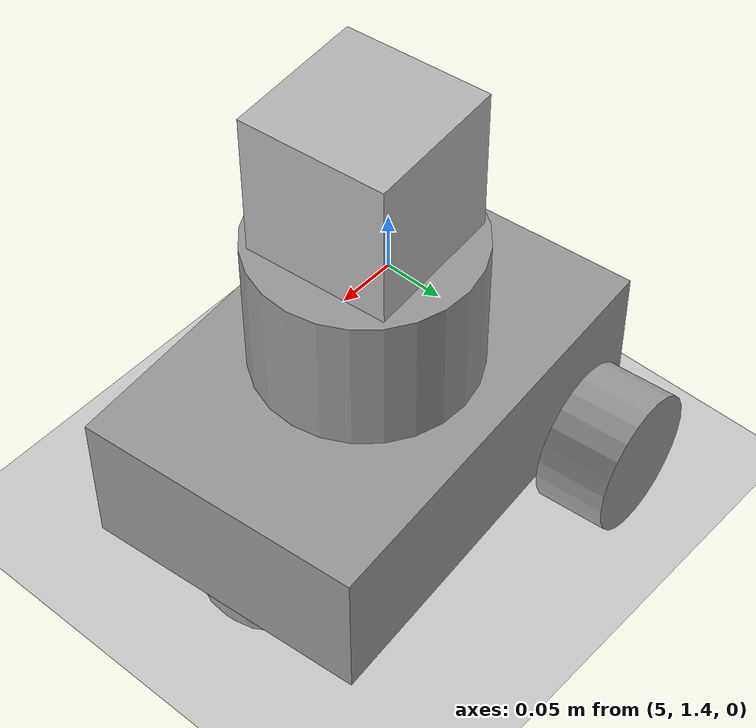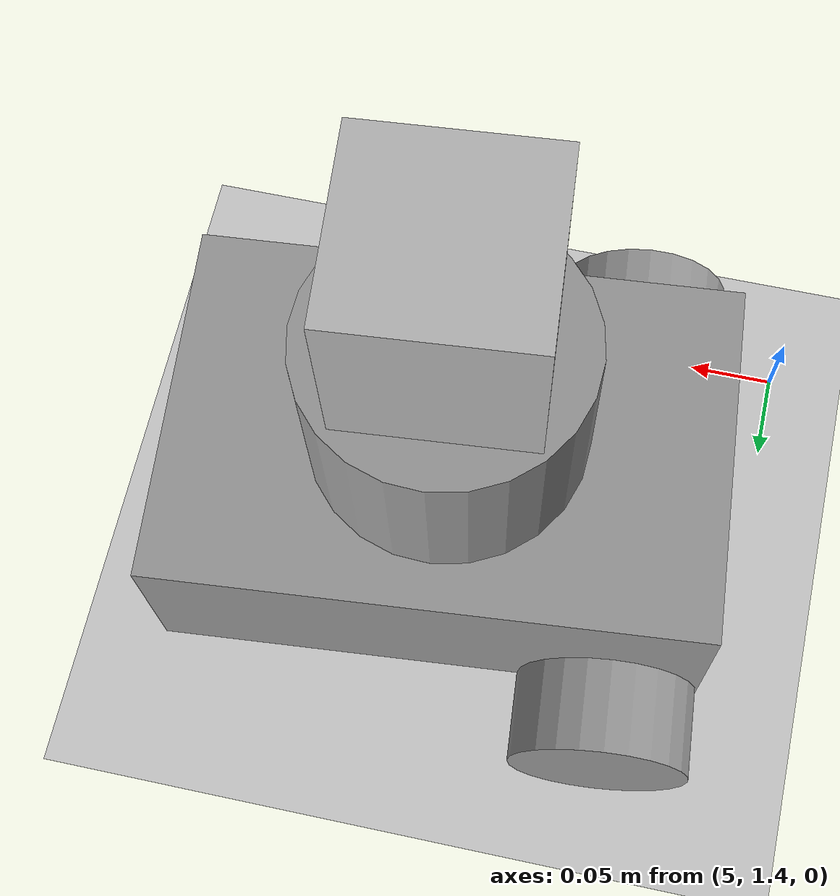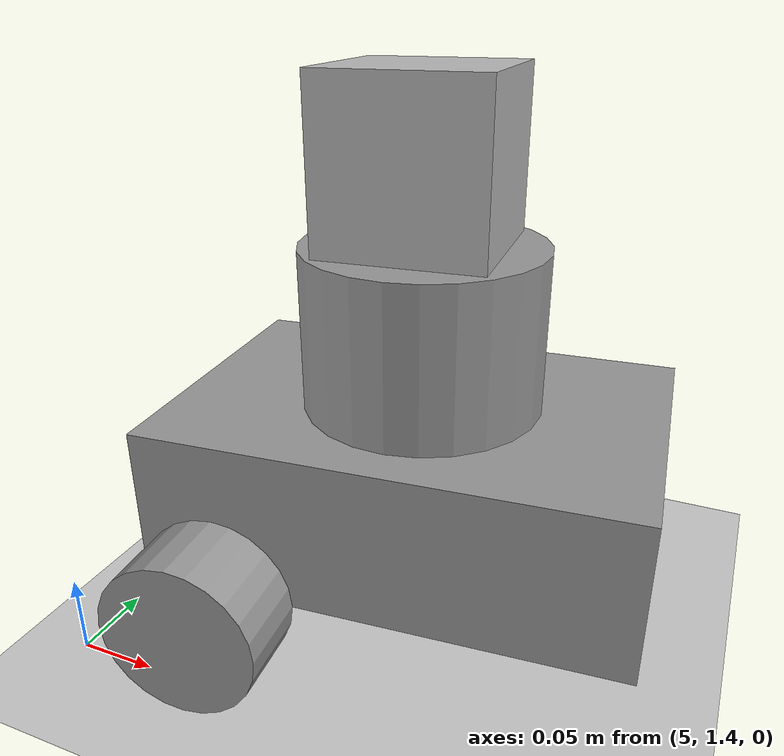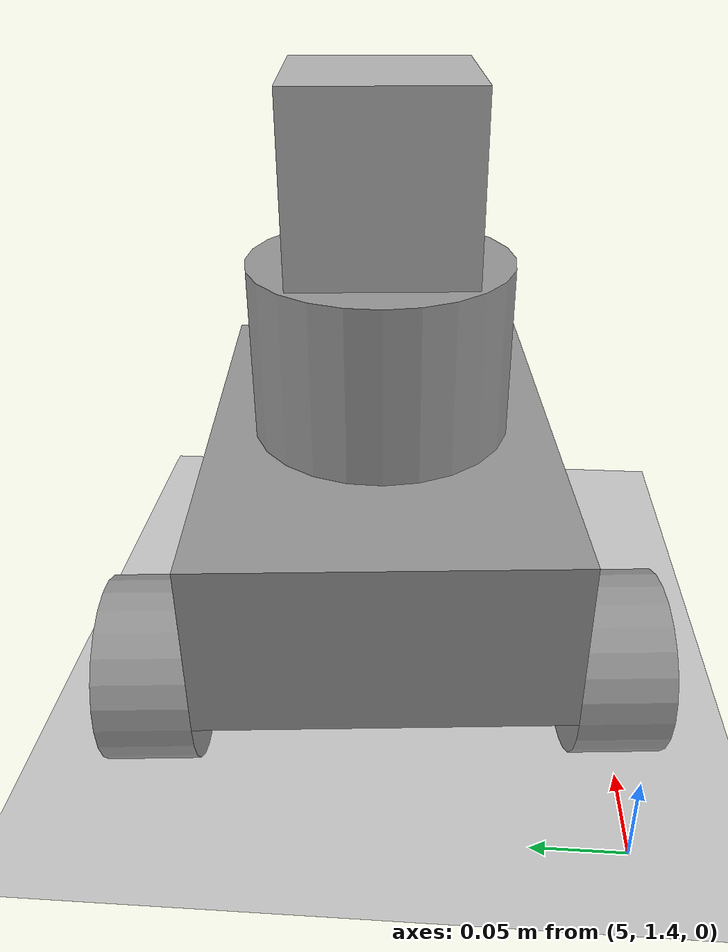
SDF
<sdf version="1.6">
 <world name="default">
  <model name="ground_plane">
   <static>1</static>
   <link name="link">
    <collision name="collision">
     <geometry><plane><normal>0 0 1</normal><size>100 100</size></plane></geometry>
     <surface>
      <contact><collide_bitmask>65535</collide_bitmask></contact>
      <friction><ode><mu>100</mu><mu2>50</mu2></ode></friction>
     </surface>
    </collision>
    <visual name="visual">
     <cast_shadows>0</cast_shadows>
     <geometry><plane><normal>0 0 1</normal><size>100 100</size></plane></geometry>
     <material>
      <script><uri>file://media/materials/scripts/gazebo.material</uri><name>Gazebo/Grey</name></script>
     </material>
    </visual>
   </link>
  </model>
  <model name="test_robot_0">
   <link name="link_0">
    <pose>0.021878 2.7e-05 0.011 0 -0 0</pose>
    <inertial>
     <mass>1</mass>
     <inertia>
      <ixx>0.166667</ixx>
      <ixy>0</ixy>
      <ixz>0</ixz>
      <iyy>0.166667</iyy>
      <iyz>0</iyz>
      <izz>0.166667</izz>
     </inertia>
    </inertial>
    <visual name="visual">
     <geometry><box><size>0.3 0.2 0.1</size></box></geometry>
     <material>
      <lighting>1</lighting>
      <script><uri>file://media/materials/scripts/gazebo.material</uri><name>Gazebo/Grey</name></script>
      <shader type="pixel"><normal_map>__default__</normal_map></shader>
      <ambient>0.3 0.3 0.3 1</ambient>
      <diffuse>0.7 0.7 0.7 1</diffuse>
      <specular>0.01 0.01 0.01 1</specular>
      <emissive>0 0 0 1</emissive>
     </material>
    </visual>
    <collision name="collision">
     <geometry><box><size>0.3 0.2 0.1</size></box></geometry>
     <surface>
      <friction>
       <ode><mu>1</mu><mu2>1</mu2><fdir1>0 0 0</fdir1><slip1>0</slip1><slip2>0</slip2></ode>
       <torsional>
        <coefficient>1</coefficient>
        <patch_radius>0</patch_radius>
        <surface_radius>0</surface_radius>
        <use_patch_radius>1</use_patch_radius>
        <ode><slip>0</slip></ode>
       </torsional>
      </friction>
      <bounce><restitution_coefficient>0</restitution_coefficient><threshold>1e+06</threshold></bounce>
      <contact>
       <collide_without_contact>0</collide_without_contact>
       <collide_without_contact_bitmask>1</collide_without_contact_bitmask>
       <collide_bitmask>1</collide_bitmask>
       <ode>
        <soft_cfm>0</soft_cfm>
        <soft_erp>0.2</soft_erp>
        <kp>1e+13</kp>
        <kd>1</kd>
        <max_vel>0.01</max_vel>
        <min_depth>0</min_depth>
       </ode>
       <bullet>
        <split_impulse>1</split_impulse>
        <split_impulse_penetration_threshold>-0.01</split_impulse_penetration_threshold>
        <soft_cfm>0</soft_cfm>
        <soft_erp>0.2</soft_erp>
        <kp>1e+13</kp>
        <kd>1</kd>
       </bullet>
      </contact>
     </surface>
    </collision>
   </link>
   <link name="link_1">
    <pose>-0.078122 0.125027 -0.039 1.5707 -0 0</pose>
    <inertial>
     <mass>1</mass>
     <inertia><ixx>0.145833</ixx><ixy>0</ixy><ixz>0</ixz><iyy>0.145833</iyy><iyz>0</iyz><izz>0.125</izz></inertia>
    </inertial>
    <visual name="visual">
     <geometry><cylinder><radius>0.05</radius><length>0.05</length></cylinder></geometry>
     <material>
      <lighting>1</lighting>
      <script><uri>file://media/materials/scripts/gazebo.material</uri><name>Gazebo/Grey</name></script>
      <shader type="pixel"><normal_map>__default__</normal_map></shader>
      <ambient>0.3 0.3 0.3 1</ambient>
      <diffuse>0.7 0.7 0.7 1</diffuse>
      <specular>0.01 0.01 0.01 1</specular>
      <emissive>0 0 0 1</emissive>
     </material>
    </visual>
    <collision name="collision">
     <geometry><cylinder><radius>0.05</radius><length>0.05</length></cylinder></geometry>
     <surface>
      <friction>
       <ode><mu>1</mu><mu2>1</mu2><fdir1>0 0 0</fdir1><slip1>0</slip1><slip2>0</slip2></ode>
       <torsional>
        <coefficient>1</coefficient>
        <patch_radius>0</patch_radius>
        <surface_radius>0</surface_radius>
        <use_patch_radius>1</use_patch_radius>
        <ode><slip>0</slip></ode>
       </torsional>
      </friction>
      <bounce><restitution_coefficient>0</restitution_coefficient><threshold>1e+06</threshold></bounce>
      <contact>
       <collide_without_contact>0</collide_without_contact>
       <collide_without_contact_bitmask>1</collide_without_contact_bitmask>
       <collide_bitmask>1</collide_bitmask>
       <ode>
        <soft_cfm>0</soft_cfm>
        <soft_erp>0.2</soft_erp>
        <kp>1e+13</kp>
        <kd>1</kd>
        <max_vel>0.01</max_vel>
        <min_depth>0</min_depth>
       </ode>
       <bullet>
        <split_impulse>1</split_impulse>
        <split_impulse_penetration_threshold>-0.01</split_impulse_penetration_threshold>
        <soft_cfm>0</soft_cfm>
        <soft_erp>0.2</soft_erp>
        <kp>1e+13</kp>
        <kd>1</kd>
       </bullet>
      </contact>
     </surface>
    </collision>
   </link>
   <link name="link_1_clone">
    <pose>-0.078122 -0.124973 -0.039 1.5707 -0 0</pose>
    <inertial>
     <mass>1</mass>
     <inertia><ixx>0.145833</ixx><ixy>0</ixy><ixz>0</ixz><iyy>0.145833</iyy><iyz>0</iyz><izz>0.125</izz></inertia>
    </inertial>
    <visual name="visual">
     <geometry><cylinder><radius>0.05</radius><length>0.05</length></cylinder></geometry>
     <material>
      <lighting>1</lighting>
      <script><uri>file://media/materials/scripts/gazebo.material</uri><name>Gazebo/Grey</name></script>
      <shader type="pixel"><normal_map>__default__</normal_map></shader>
      <ambient>0.3 0.3 0.3 1</ambient>
      <diffuse>0.7 0.7 0.7 1</diffuse>
      <specular>0.01 0.01 0.01 1</specular>
      <emissive>0 0 0 1</emissive>
     </material>
    </visual>
    <collision name="collision">
     <geometry><cylinder><radius>0.05</radius><length>0.05</length></cylinder></geometry>
     <surface>
      <friction>
       <ode><mu>1</mu><mu2>1</mu2><fdir1>0 0 0</fdir1><slip1>0</slip1><slip2>0</slip2></ode>
       <torsional>
        <coefficient>1</coefficient>
        <patch_radius>0</patch_radius>
        <surface_radius>0</surface_radius>
        <use_patch_radius>1</use_patch_radius>
        <ode><slip>0</slip></ode>
       </torsional>
      </friction>
      <bounce><restitution_coefficient>0</restitution_coefficient><threshold>1e+06</threshold></bounce>
      <contact>
       <collide_without_contact>0</collide_without_contact>
       <collide_without_contact_bitmask>1</collide_without_contact_bitmask>
       <collide_bitmask>1</collide_bitmask>
       <ode>
        <soft_cfm>0</soft_cfm>
        <soft_erp>0.2</soft_erp>
        <kp>1e+13</kp>
        <kd>1</kd>
        <max_vel>0.01</max_vel>
        <min_depth>0</min_depth>
       </ode>
       <bullet>
        <split_impulse>1</split_impulse>
        <split_impulse_penetration_threshold>-0.01</split_impulse_penetration_threshold>
        <soft_cfm>0</soft_cfm>
        <soft_erp>0.2</soft_erp>
        <kp>1e+13</kp>
        <kd>1</kd>
       </bullet>
      </contact>
     </surface>
    </collision>
   </link>
   <link name="link_2">
    <pose>0.121878 2.7e-05 -0.039 0 -0 0</pose>
    <inertial>
     <mass>1</mass>
     <inertia><ixx>0.1</ixx><ixy>0</ixy><ixz>0</ixz><iyy>0.1</iyy><iyz>0</iyz><izz>0.1</izz></inertia>
    </inertial>
    <visual name="visual">
     <geometry><sphere><radius>0.05</radius></sphere></geometry>
     <material>
      <lighting>1</lighting>
      <script><uri>file://media/materials/scripts/gazebo.material</uri><name>Gazebo/Grey</name></script>
      <shader type="pixel"><normal_map>__default__</normal_map></shader>
      <ambient>0.3 0.3 0.3 1</ambient>
      <diffuse>0.7 0.7 0.7 1</diffuse>
      <specular>0.01 0.01 0.01 1</specular>
      <emissive>0 0 0 1</emissive>
     </material>
    </visual>
    <collision name="collision">
     <geometry><sphere><radius>0.05</radius></sphere></geometry>
     <surface>
      <friction>
       <ode><mu>1</mu><mu2>1</mu2><fdir1>0 0 0</fdir1><slip1>0</slip1><slip2>0</slip2></ode>
       <torsional>
        <coefficient>1</coefficient>
        <patch_radius>0</patch_radius>
        <surface_radius>0</surface_radius>
        <use_patch_radius>1</use_patch_radius>
        <ode><slip>0</slip></ode>
       </torsional>
      </friction>
      <bounce><restitution_coefficient>0</restitution_coefficient><threshold>1e+06</threshold></bounce>
      <contact>
       <collide_without_contact>0</collide_without_contact>
       <collide_without_contact_bitmask>1</collide_without_contact_bitmask>
       <collide_bitmask>1</collide_bitmask>
       <ode>
        <soft_cfm>0</soft_cfm>
        <soft_erp>0.2</soft_erp>
        <kp>1e+13</kp>
        <kd>1</kd>
        <max_vel>0.01</max_vel>
        <min_depth>0</min_depth>
       </ode>
       <bullet>
        <split_impulse>1</split_impulse>
        <split_impulse_penetration_threshold>-0.01</split_impulse_penetration_threshold>
        <soft_cfm>0</soft_cfm>
        <soft_erp>0.2</soft_erp>
        <kp>1e+13</kp>
        <kd>1</kd>
       </bullet>
      </contact>
     </surface>
    </collision>
   </link>
   <link name="link_3">
    <pose>0.021878 2.7e-05 0.111 0 -0 0</pose>
    <inertial>
     <mass>1</mass>
     <inertia><ixx>0.145833</ixx><ixy>0</ixy><ixz>0</ixz><iyy>0.145833</iyy><iyz>0</iyz><izz>0.125</izz></inertia>
    </inertial>
    <visual name="visual">
     <geometry><cylinder><radius>0.075</radius><length>0.1</length></cylinder></geometry>
     <material>
      <lighting>1</lighting>
      <script><uri>file://media/materials/scripts/gazebo.material</uri><name>Gazebo/Grey</name></script>
      <shader type="pixel"><normal_map>__default__</normal_map></shader>
      <ambient>0.3 0.3 0.3 1</ambient>
      <diffuse>0.7 0.7 0.7 1</diffuse>
      <specular>0.01 0.01 0.01 1</specular>
      <emissive>0 0 0 1</emissive>
     </material>
    </visual>
    <collision name="collision">
     <geometry><cylinder><radius>0.075</radius><length>0.1</length></cylinder></geometry>
     <surface>
      <friction>
       <ode><mu>1</mu><mu2>1</mu2><fdir1>0 0 0</fdir1><slip1>0</slip1><slip2>0</slip2></ode>
       <torsional>
        <coefficient>1</coefficient>
        <patch_radius>0</patch_radius>
        <surface_radius>0</surface_radius>
        <use_patch_radius>1</use_patch_radius>
        <ode><slip>0</slip></ode>
       </torsional>
      </friction>
      <bounce><restitution_coefficient>0</restitution_coefficient><threshold>1e+06</threshold></bounce>
      <contact>
       <collide_without_contact>0</collide_without_contact>
       <collide_without_contact_bitmask>1</collide_without_contact_bitmask>
       <collide_bitmask>1</collide_bitmask>
       <ode>
        <soft_cfm>0</soft_cfm>
        <soft_erp>0.2</soft_erp>
        <kp>1e+13</kp>
        <kd>1</kd>
        <max_vel>0.01</max_vel>
        <min_depth>0</min_depth>
       </ode>
       <bullet>
        <split_impulse>1</split_impulse>
        <split_impulse_penetration_threshold>-0.01</split_impulse_penetration_threshold>
        <soft_cfm>0</soft_cfm>
        <soft_erp>0.2</soft_erp>
        <kp>1e+13</kp>
        <kd>1</kd>
       </bullet>
      </contact>
     </surface>
    </collision>
   </link>
   <model name="depth_camera">
    <link name="link">
     <pose>0 0 0.05 0 -0 0</pose>
     <inertial>
      <mass>0.1</mass>
      <inertia>
       <ixx>0.000166667</ixx>
       <iyy>0.000166667</iyy>
       <izz>0.000166667</izz>
       <ixy>0</ixy>
       <ixz>0</ixz>
       <iyz>0</iyz>
      </inertia>
     </inertial>
     <collision name="collision"><geometry><box><size>0.1 0.1 0.1</size></box></geometry></collision>
     <visual name="visual"><geometry><box><size>0.1 0.1 0.1</size></box></geometry></visual>
     <sensor name="camera" type="depth">
      <camera name="__default__">
       <horizontal_fov>1.047</horizontal_fov>
       <image><width>320</width><height>240</height></image>
       <clip><near>0.1</near><far>100</far></clip>
      </camera>
      <always_on>1</always_on>
      <update_rate>30</update_rate>
      <visualize>1</visualize>
     </sensor>
    </link>
    <pose>0.020611 -0.000134 0.159999 0 -0 0</pose>
   </model>
   <joint name="link_0_JOINT_0" type="revolute">
    <parent>link_0</parent>
    <child>link_1</child>
    <axis>
     <xyz>0 0 1</xyz>
     <use_parent_model_frame>0</use_parent_model_frame>
     <limit>
      <lower>-1.79769e+308</lower>
      <upper>1.79769e+308</upper>
      <effort>-1</effort>
      <velocity>-1</velocity>
     </limit>
     <dynamics>
      <spring_reference>0</spring_reference>
      <spring_stiffness>0</spring_stiffness>
      <damping>0</damping>
     </dynamics>
    </axis>
    <physics>
     <ode><limit><cfm>0</cfm><erp>0.2</erp></limit><suspension><cfm>0</cfm><erp>0.2</erp></suspension></ode>
    </physics>
   </joint>
   <joint name="link_0_JOINT_1" type="revolute">
    <parent>link_0</parent>
    <child>link_1_clone</child>
    <axis>
     <xyz>0 0 1</xyz>
     <use_parent_model_frame>0</use_parent_model_frame>
     <limit>
      <lower>-1.79769e+308</lower>
      <upper>1.79769e+308</upper>
      <effort>-1</effort>
      <velocity>-1</velocity>
     </limit>
     <dynamics>
      <spring_reference>0</spring_reference>
      <spring_stiffness>0</spring_stiffness>
      <damping>0</damping>
     </dynamics>
    </axis>
    <physics>
     <ode><limit><cfm>0</cfm><erp>0.2</erp></limit><suspension><cfm>0</cfm><erp>0.2</erp></suspension></ode>
    </physics>
   </joint>
   <joint name="link_0_JOINT_3" type="ball">
    <parent>link_0</parent>
    <child>link_2</child>
    <physics>
     <ode><limit><cfm>0</cfm><erp>0.2</erp></limit><suspension><cfm>0</cfm><erp>0.2</erp></suspension></ode>
    </physics>
   </joint>
   <joint name="link_0_JOINT_4" type="fixed">
    <parent>link_0</parent>
    <child>link_3</child>
    <physics>
     <ode><limit><cfm>0</cfm><erp>0.2</erp></limit><suspension><cfm>0</cfm><erp>0.2</erp></suspension></ode>
    </physics>
   </joint>
   <joint name="link_3_JOINT_6" type="fixed">
    <parent>link_3</parent>
    <child>depth_camera::link</child>
    <physics>
     <ode><limit><cfm>0</cfm><erp>0.2</erp></limit><suspension><cfm>0</cfm><erp>0.2</erp></suspension></ode>
    </physics>
   </joint>
   <static>0</static>
   <pose>5.15554 1.53605 0.089001 2e-06 1.1e-05 0.086071</pose>
  </model>
 </world>
</sdf>
